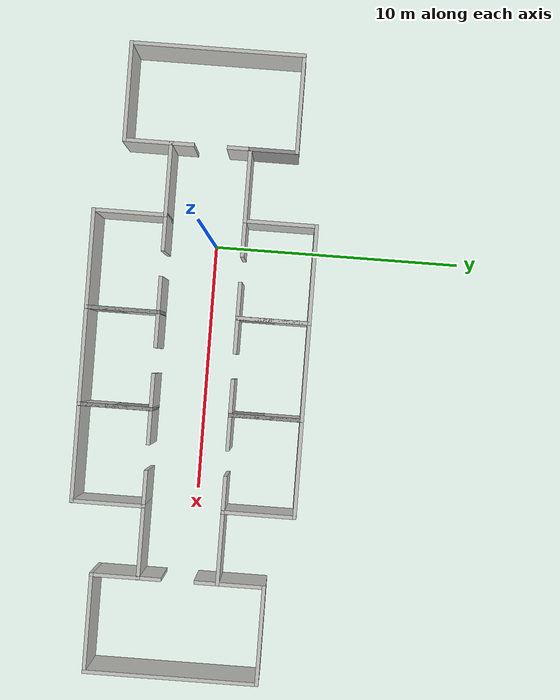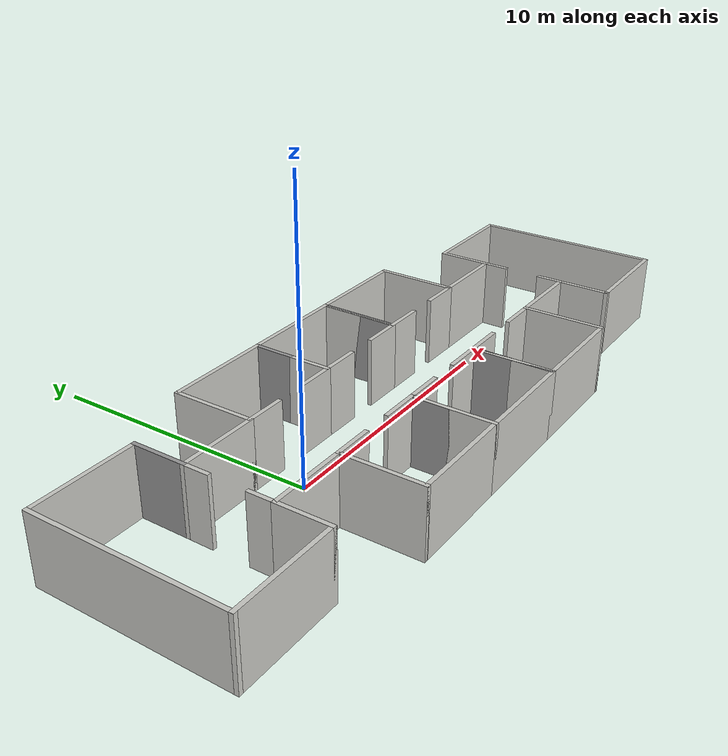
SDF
<?xml version='1.0'?>
<sdf version='1.7'>
  <model name='FPSO_World_'>
    <pose>4.87469 -0.36213 0 0 -0 0</pose>
    <link name='Wall_10'>
      <collision name='Wall_10_Collision'>
        <geometry>
          <box>
            <size>4 0.15 2.5</size>
          </box>
        </geometry>
        <pose>0 0 1.25 0 -0 0</pose>
      </collision>
      <visual name='Wall_10_Visual'>
        <pose>0 0 1.25 0 -0 0</pose>
        <geometry>
          <box>
            <size>4 0.15 2.5</size>
          </box>
        </geometry>
        <material>
          <script>
            <uri>file://media/materials/scripts/gazebo.material</uri>
            <name>Gazebo/CeilingTiled</name>
          </script>
          <ambient>1 1 1 1</ambient>
        </material>
        <meta>
          <layer>0</layer>
        </meta>
      </visual>
      <pose>-10.55 -3.425 0 0 -0 0</pose>
    </link>
    <link name='Wall_11'>
      <collision name='Wall_11_Collision'>
        <geometry>
          <box>
            <size>2 0.15 2.5</size>
          </box>
        </geometry>
        <pose>0 0 1.25 0 -0 0</pose>
      </collision>
      <visual name='Wall_11_Visual'>
        <pose>0 0 1.25 0 -0 0</pose>
        <geometry>
          <box>
            <size>2 0.15 2.5</size>
          </box>
        </geometry>
        <material>
          <script>
            <uri>file://media/materials/scripts/gazebo.material</uri>
            <name>Gazebo/CeilingTiled</name>
          </script>
          <ambient>1 1 1 1</ambient>
        </material>
        <meta>
          <layer>0</layer>
        </meta>
      </visual>
      <pose>-8.625 -2.5 0 0 -0 1.5708</pose>
    </link>
    <link name='Wall_13'>
      <collision name='Wall_13_Collision'>
        <geometry>
          <box>
            <size>2 0.15 2.5</size>
          </box>
        </geometry>
        <pose>0 0 1.25 0 -0 0</pose>
      </collision>
      <visual name='Wall_13_Visual'>
        <pose>0 0 1.25 0 -0 0</pose>
        <geometry>
          <box>
            <size>2 0.15 2.5</size>
          </box>
        </geometry>
        <material>
          <script>
            <uri>file://media/materials/scripts/gazebo.material</uri>
            <name>Gazebo/Grey</name>
          </script>
          <ambient>1 1 1 1</ambient>
        </material>
        <meta>
          <layer>0</layer>
        </meta>
      </visual>
      <pose>-8.625 2.5 0 0 -0 -1.5708</pose>
    </link>
    <link name='Wall_14'>
      <collision name='Wall_14_Collision'>
        <geometry>
          <box>
            <size>3.00007 0.15 2.5</size>
          </box>
        </geometry>
        <pose>0 0 1.25 0 -0 0</pose>
      </collision>
      <visual name='Wall_14_Visual'>
        <pose>0 0 1.25 0 -0 0</pose>
        <geometry>
          <box>
            <size>3.00007 0.15 2.5</size>
          </box>
        </geometry>
        <material>
          <script>
            <uri>file://media/materials/scripts/gazebo.material</uri>
            <name>Gazebo/CeilingTiled</name>
          </script>
          <ambient>1 1 1 1</ambient>
        </material>
        <meta>
          <layer>0</layer>
        </meta>
      </visual>
      <pose>-7.2 1.575 0 0 -0 0</pose>
    </link>
    <link name='Wall_16'>
      <collision name='Wall_16_Collision'>
        <geometry>
          <box>
            <size>3 0.15 2.5</size>
          </box>
        </geometry>
        <pose>0 0 1.25 0 -0 0</pose>
      </collision>
      <visual name='Wall_16_Visual'>
        <pose>0 0 1.25 0 -0 0</pose>
        <geometry>
          <box>
            <size>3 0.15 2.5</size>
          </box>
        </geometry>
        <material>
          <script>
            <uri>file://media/materials/scripts/gazebo.material</uri>
            <name>Gazebo/CeilingTiled</name>
          </script>
          <ambient>1 1 1 1</ambient>
        </material>
        <meta>
          <layer>0</layer>
        </meta>
      </visual>
      <pose>-5.775 3 0 0 -0 1.5708</pose>
    </link>
    <link name='Wall_17'>
      <collision name='Wall_17_Collision'>
        <geometry>
          <box>
            <size>4 0.15 2.5</size>
          </box>
        </geometry>
        <pose>0 0 1.25 0 -0 0</pose>
      </collision>
      <visual name='Wall_17_Visual'>
        <pose>0 0 1.25 0 -0 0</pose>
        <geometry>
          <box>
            <size>4 0.15 2.5</size>
          </box>
        </geometry>
        <material>
          <script>
            <uri>file://media/materials/scripts/gazebo.material</uri>
            <name>Gazebo/CeilingTiled</name>
          </script>
          <ambient>1 1 1 1</ambient>
        </material>
        <meta>
          <layer>0</layer>
        </meta>
      </visual>
      <pose>-3.85 4.425 0 0 -0 0</pose>
    </link>
    <link name='Wall_18'>
      <collision name='Wall_18_Collision'>
        <geometry>
          <box>
            <size>3 0.15 2.5</size>
          </box>
        </geometry>
        <pose>0 0 1.25 0 -0 0</pose>
      </collision>
      <visual name='Wall_18_Visual'>
        <pose>0 0 1.25 0 -0 0</pose>
        <geometry>
          <box>
            <size>3 0.15 2.5</size>
          </box>
        </geometry>
        <material>
          <script>
            <uri>file://media/materials/scripts/gazebo.material</uri>
            <name>Gazebo/CeilingTiled</name>
          </script>
          <ambient>1 1 1 1</ambient>
        </material>
        <meta>
          <layer>0</layer>
        </meta>
      </visual>
      <pose>-1.925 3 0 0 -0 -1.5708</pose>
    </link>
    <link name='Wall_19'>
      <collision name='Wall_19_Collision'>
        <geometry>
          <box>
            <size>3 0.15 2.5</size>
          </box>
        </geometry>
        <pose>0 0 1.25 0 -0 0</pose>
      </collision>
      <visual name='Wall_19_Visual'>
        <pose>0 0 1.25 0 -0 0</pose>
        <geometry>
          <box>
            <size>3 0.15 2.5</size>
          </box>
        </geometry>
        <material>
          <script>
            <uri>file://media/materials/scripts/gazebo.material</uri>
            <name>Gazebo/Grey</name>
          </script>
          <ambient>1 1 1 1</ambient>
        </material>
        <meta>
          <layer>0</layer>
        </meta>
      </visual>
      <pose>-1.925 3 0 0 -0 1.5708</pose>
    </link>
    <link name='Wall_2'>
      <collision name='Wall_2_Collision'>
        <geometry>
          <box>
            <size>7 0.15 2.5</size>
          </box>
        </geometry>
        <pose>0 0 1.25 0 -0 0</pose>
      </collision>
      <visual name='Wall_2_Visual'>
        <pose>0 0 1.25 0 -0 0</pose>
        <geometry>
          <box>
            <size>7 0.15 2.5</size>
          </box>
        </geometry>
        <material>
          <script>
            <uri>file://media/materials/scripts/gazebo.material</uri>
            <name>Gazebo/CeilingTiled</name>
          </script>
          <ambient>1 1 1 1</ambient>
        </material>
        <meta>
          <layer>0</layer>
        </meta>
      </visual>
      <pose>-12.475 0 0 0 -0 1.5708</pose>
    </link>
    <link name='Wall_20'>
      <collision name='Wall_20_Collision'>
        <geometry>
          <box>
            <size>4 0.15 2.5</size>
          </box>
        </geometry>
        <pose>0 0 1.25 0 -0 0</pose>
      </collision>
      <visual name='Wall_20_Visual'>
        <pose>0 0 1.25 0 -0 0</pose>
        <geometry>
          <box>
            <size>4 0.15 2.5</size>
          </box>
        </geometry>
        <material>
          <script>
            <uri>file://media/materials/scripts/gazebo.material</uri>
            <name>Gazebo/CeilingTiled</name>
          </script>
          <ambient>1 1 1 1</ambient>
        </material>
        <meta>
          <layer>0</layer>
        </meta>
      </visual>
      <pose>0 4.425 0 0 -0 0</pose>
    </link>
    <link name='Wall_21'>
      <collision name='Wall_21_Collision'>
        <geometry>
          <box>
            <size>3 0.15 2.5</size>
          </box>
        </geometry>
        <pose>0 0 1.25 0 -0 0</pose>
      </collision>
      <visual name='Wall_21_Visual'>
        <pose>0 0 1.25 0 -0 0</pose>
        <geometry>
          <box>
            <size>3 0.15 2.5</size>
          </box>
        </geometry>
        <material>
          <script>
            <uri>file://media/materials/scripts/gazebo.material</uri>
            <name>Gazebo/Grey</name>
          </script>
          <ambient>1 1 1 1</ambient>
        </material>
        <meta>
          <layer>0</layer>
        </meta>
      </visual>
      <pose>1.925 3 0 0 -0 -1.5708</pose>
    </link>
    <link name='Wall_22'>
      <collision name='Wall_22_Collision'>
        <geometry>
          <box>
            <size>3 0.15 2.5</size>
          </box>
        </geometry>
        <pose>0 0 1.25 0 -0 0</pose>
      </collision>
      <visual name='Wall_22_Visual'>
        <pose>0 0 1.25 0 -0 0</pose>
        <geometry>
          <box>
            <size>3 0.15 2.5</size>
          </box>
        </geometry>
        <material>
          <script>
            <uri>file://media/materials/scripts/gazebo.material</uri>
            <name>Gazebo/CeilingTiled</name>
          </script>
          <ambient>1 1 1 1</ambient>
        </material>
        <meta>
          <layer>0</layer>
        </meta>
      </visual>
      <pose>1.925 3 0 0 -0 1.5708</pose>
    </link>
    <link name='Wall_23'>
      <collision name='Wall_23_Collision'>
        <geometry>
          <box>
            <size>4 0.15 2.5</size>
          </box>
        </geometry>
        <pose>0 0 1.25 0 -0 0</pose>
      </collision>
      <visual name='Wall_23_Visual'>
        <pose>0 0 1.25 0 -0 0</pose>
        <geometry>
          <box>
            <size>4 0.15 2.5</size>
          </box>
        </geometry>
        <material>
          <script>
            <uri>file://media/materials/scripts/gazebo.material</uri>
            <name>Gazebo/CeilingTiled</name>
          </script>
          <ambient>1 1 1 1</ambient>
        </material>
        <meta>
          <layer>0</layer>
        </meta>
      </visual>
      <pose>3.85 4.425 0 0 -0 0</pose>
    </link>
    <link name='Wall_24'>
      <collision name='Wall_24_Collision'>
        <geometry>
          <box>
            <size>3 0.15 2.5</size>
          </box>
        </geometry>
        <pose>0 0 1.25 0 -0 0</pose>
      </collision>
      <visual name='Wall_24_Visual'>
        <pose>0 0 1.25 0 -0 0</pose>
        <geometry>
          <box>
            <size>3 0.15 2.5</size>
          </box>
        </geometry>
        <material>
          <script>
            <uri>file://media/materials/scripts/gazebo.material</uri>
            <name>Gazebo/CeilingTiled</name>
          </script>
          <ambient>1 1 1 1</ambient>
        </material>
        <meta>
          <layer>0</layer>
        </meta>
      </visual>
      <pose>5.775 3 0 0 -0 -1.5708</pose>
    </link>
    <link name='Wall_26'>
      <collision name='Wall_26_Collision'>
        <geometry>
          <box>
            <size>3 0.15 2.5</size>
          </box>
        </geometry>
        <pose>0 0 1.25 0 -0 0</pose>
      </collision>
      <visual name='Wall_26_Visual'>
        <pose>0 0 1.25 0 -0 0</pose>
        <geometry>
          <box>
            <size>3 0.15 2.5</size>
          </box>
        </geometry>
        <material>
          <script>
            <uri>file://media/materials/scripts/gazebo.material</uri>
            <name>Gazebo/CeilingTiled</name>
          </script>
          <ambient>1 1 1 1</ambient>
        </material>
        <meta>
          <layer>0</layer>
        </meta>
      </visual>
      <pose>-7.2 -1.575 0 0 -0 0</pose>
    </link>
    <link name='Wall_27'>
      <collision name='Wall_27_Collision'>
        <geometry>
          <box>
            <size>3 0.15 2.5</size>
          </box>
        </geometry>
        <pose>0 0 1.25 0 -0 0</pose>
      </collision>
      <visual name='Wall_27_Visual'>
        <pose>0 0 1.25 0 -0 0</pose>
        <geometry>
          <box>
            <size>3 0.15 2.5</size>
          </box>
        </geometry>
        <material>
          <script>
            <uri>file://media/materials/scripts/gazebo.material</uri>
            <name>Gazebo/CeilingTiled</name>
          </script>
          <ambient>1 1 1 1</ambient>
        </material>
        <meta>
          <layer>0</layer>
        </meta>
      </visual>
      <pose>-5.775 -3 0 0 -0 -1.5708</pose>
    </link>
    <link name='Wall_28'>
      <collision name='Wall_28_Collision'>
        <geometry>
          <box>
            <size>4 0.15 2.5</size>
          </box>
        </geometry>
        <pose>0 0 1.25 0 -0 0</pose>
      </collision>
      <visual name='Wall_28_Visual'>
        <pose>0 0 1.25 0 -0 0</pose>
        <geometry>
          <box>
            <size>4 0.15 2.5</size>
          </box>
        </geometry>
        <material>
          <script>
            <uri>file://media/materials/scripts/gazebo.material</uri>
            <name>Gazebo/CeilingTiled</name>
          </script>
          <ambient>1 1 1 1</ambient>
        </material>
        <meta>
          <layer>0</layer>
        </meta>
      </visual>
      <pose>-3.85 -4.425 0 0 -0 0</pose>
    </link>
    <link name='Wall_29'>
      <collision name='Wall_29_Collision'>
        <geometry>
          <box>
            <size>3 0.15 2.5</size>
          </box>
        </geometry>
        <pose>0 0 1.25 0 -0 0</pose>
      </collision>
      <visual name='Wall_29_Visual'>
        <pose>0 0 1.25 0 -0 0</pose>
        <geometry>
          <box>
            <size>3 0.15 2.5</size>
          </box>
        </geometry>
        <material>
          <script>
            <uri>file://media/materials/scripts/gazebo.material</uri>
            <name>Gazebo/Grey</name>
          </script>
          <ambient>1 1 1 1</ambient>
        </material>
        <meta>
          <layer>0</layer>
        </meta>
      </visual>
      <pose>-1.925 -3 0 0 -0 1.5708</pose>
    </link>
    <link name='Wall_3'>
      <collision name='Wall_3_Collision'>
        <geometry>
          <box>
            <size>4 0.15 2.5</size>
          </box>
        </geometry>
        <pose>0 0 1.25 0 -0 0</pose>
      </collision>
      <visual name='Wall_3_Visual'>
        <pose>0 0 1.25 0 -0 0</pose>
        <geometry>
          <box>
            <size>4 0.15 2.5</size>
          </box>
        </geometry>
        <material>
          <script>
            <uri>file://media/materials/scripts/gazebo.material</uri>
            <name>Gazebo/CeilingTiled</name>
          </script>
          <ambient>1 1 1 1</ambient>
        </material>
        <meta>
          <layer>0</layer>
        </meta>
      </visual>
      <pose>-10.55 3.425 0 0 -0 0</pose>
    </link>
    <link name='Wall_31'>
      <collision name='Wall_31_Collision'>
        <geometry>
          <box>
            <size>3 0.15 2.5</size>
          </box>
        </geometry>
        <pose>0 0 1.25 0 -0 0</pose>
      </collision>
      <visual name='Wall_31_Visual'>
        <pose>0 0 1.25 0 -0 0</pose>
        <geometry>
          <box>
            <size>3 0.15 2.5</size>
          </box>
        </geometry>
        <material>
          <script>
            <uri>file://media/materials/scripts/gazebo.material</uri>
            <name>Gazebo/CeilingTiled</name>
          </script>
          <ambient>1 1 1 1</ambient>
        </material>
        <meta>
          <layer>0</layer>
        </meta>
      </visual>
      <pose>-1.925 -3 0 0 -0 -1.5708</pose>
    </link>
    <link name='Wall_32'>
      <collision name='Wall_32_Collision'>
        <geometry>
          <box>
            <size>4 0.15 2.5</size>
          </box>
        </geometry>
        <pose>0 0 1.25 0 -0 0</pose>
      </collision>
      <visual name='Wall_32_Visual'>
        <pose>0 0 1.25 0 -0 0</pose>
        <geometry>
          <box>
            <size>4 0.15 2.5</size>
          </box>
        </geometry>
        <material>
          <script>
            <uri>file://media/materials/scripts/gazebo.material</uri>
            <name>Gazebo/CeilingTiled</name>
          </script>
          <ambient>1 1 1 1</ambient>
        </material>
        <meta>
          <layer>0</layer>
        </meta>
      </visual>
      <pose>0 -4.425 0 0 -0 0</pose>
    </link>
    <link name='Wall_33'>
      <collision name='Wall_33_Collision'>
        <geometry>
          <box>
            <size>3 0.15 2.5</size>
          </box>
        </geometry>
        <pose>0 0 1.25 0 -0 0</pose>
      </collision>
      <visual name='Wall_33_Visual'>
        <pose>0 0 1.25 0 -0 0</pose>
        <geometry>
          <box>
            <size>3 0.15 2.5</size>
          </box>
        </geometry>
        <material>
          <script>
            <uri>file://media/materials/scripts/gazebo.material</uri>
            <name>Gazebo/Grey</name>
          </script>
          <ambient>1 1 1 1</ambient>
        </material>
        <meta>
          <layer>0</layer>
        </meta>
      </visual>
      <pose>1.925 -3 0 0 -0 1.5708</pose>
    </link>
    <link name='Wall_34'>
      <collision name='Wall_34_Collision'>
        <geometry>
          <box>
            <size>3 0.15 2.5</size>
          </box>
        </geometry>
        <pose>0 0 1.25 0 -0 0</pose>
      </collision>
      <visual name='Wall_34_Visual'>
        <pose>0 0 1.25 0 -0 0</pose>
        <geometry>
          <box>
            <size>3 0.15 2.5</size>
          </box>
        </geometry>
        <material>
          <script>
            <uri>file://media/materials/scripts/gazebo.material</uri>
            <name>Gazebo/CeilingTiled</name>
          </script>
          <ambient>1 1 1 1</ambient>
        </material>
        <meta>
          <layer>0</layer>
        </meta>
      </visual>
      <pose>1.925 -3 0 0 -0 -1.5708</pose>
    </link>
    <link name='Wall_35'>
      <collision name='Wall_35_Collision'>
        <geometry>
          <box>
            <size>4 0.15 2.5</size>
          </box>
        </geometry>
        <pose>0 0 1.25 0 -0 0</pose>
      </collision>
      <visual name='Wall_35_Visual'>
        <pose>0 0 1.25 0 -0 0</pose>
        <geometry>
          <box>
            <size>4 0.15 2.5</size>
          </box>
        </geometry>
        <material>
          <script>
            <uri>file://media/materials/scripts/gazebo.material</uri>
            <name>Gazebo/CeilingTiled</name>
          </script>
          <ambient>1 1 1 1</ambient>
        </material>
        <meta>
          <layer>0</layer>
        </meta>
      </visual>
      <pose>3.85 -4.425 0 0 -0 0</pose>
    </link>
    <link name='Wall_36'>
      <collision name='Wall_36_Collision'>
        <geometry>
          <box>
            <size>3 0.15 2.5</size>
          </box>
        </geometry>
        <pose>0 0 1.25 0 -0 0</pose>
      </collision>
      <visual name='Wall_36_Visual'>
        <pose>0 0 1.25 0 -0 0</pose>
        <geometry>
          <box>
            <size>3 0.15 2.5</size>
          </box>
        </geometry>
        <material>
          <script>
            <uri>file://media/materials/scripts/gazebo.material</uri>
            <name>Gazebo/CeilingTiled</name>
          </script>
          <ambient>1 1 1 1</ambient>
        </material>
        <meta>
          <layer>0</layer>
        </meta>
      </visual>
      <pose>5.775 -3 0 0 -0 1.5708</pose>
    </link>
    <link name='Wall_39'>
      <collision name='Wall_39_Collision'>
        <geometry>
          <box>
            <size>3 0.15 2.5</size>
          </box>
        </geometry>
        <pose>0 0 1.25 0 -0 0</pose>
      </collision>
      <visual name='Wall_39_Visual'>
        <pose>0 0 1.25 0 -0 0</pose>
        <geometry>
          <box>
            <size>3 0.15 2.5</size>
          </box>
        </geometry>
        <material>
          <script>
            <uri>file://media/materials/scripts/gazebo.material</uri>
            <name>Gazebo/CeilingTiled</name>
          </script>
          <ambient>1 1 1 1</ambient>
        </material>
        <meta>
          <layer>0</layer>
        </meta>
      </visual>
      <pose>7.2 1.575 0 0 -0 0</pose>
    </link>
    <link name='Wall_41'>
      <collision name='Wall_41_Collision'>
        <geometry>
          <box>
            <size>2 0.15 2.5</size>
          </box>
        </geometry>
        <pose>0 0 1.25 0 -0 0</pose>
      </collision>
      <visual name='Wall_41_Visual'>
        <pose>0 0 1.25 0 -0 0</pose>
        <geometry>
          <box>
            <size>2 0.15 2.5</size>
          </box>
        </geometry>
        <material>
          <script>
            <uri>file://media/materials/scripts/gazebo.material</uri>
            <name>Gazebo/CeilingTiled</name>
          </script>
          <ambient>1 1 1 1</ambient>
        </material>
        <meta>
          <layer>0</layer>
        </meta>
      </visual>
      <pose>8.625 2.5 0 0 -0 1.5708</pose>
    </link>
    <link name='Wall_43'>
      <collision name='Wall_43_Collision'>
        <geometry>
          <box>
            <size>4 0.15 2.5</size>
          </box>
        </geometry>
        <pose>0 0 1.25 0 -0 0</pose>
      </collision>
      <visual name='Wall_43_Visual'>
        <pose>0 0 1.25 0 -0 0</pose>
        <geometry>
          <box>
            <size>4 0.15 2.5</size>
          </box>
        </geometry>
        <material>
          <script>
            <uri>file://media/materials/scripts/gazebo.material</uri>
            <name>Gazebo/CeilingTiled</name>
          </script>
          <ambient>1 1 1 1</ambient>
        </material>
        <meta>
          <layer>0</layer>
        </meta>
      </visual>
      <pose>10.55 3.425 0 0 -0 0</pose>
    </link>
    <link name='Wall_44'>
      <collision name='Wall_44_Collision'>
        <geometry>
          <box>
            <size>7 0.15 2.5</size>
          </box>
        </geometry>
        <pose>0 0 1.25 0 -0 0</pose>
      </collision>
      <visual name='Wall_44_Visual'>
        <pose>0 0 1.25 0 -0 0</pose>
        <geometry>
          <box>
            <size>7 0.15 2.5</size>
          </box>
        </geometry>
        <material>
          <script>
            <uri>file://media/materials/scripts/gazebo.material</uri>
            <name>Gazebo/CeilingTiled</name>
          </script>
          <ambient>1 1 1 1</ambient>
        </material>
        <meta>
          <layer>0</layer>
        </meta>
      </visual>
      <pose>12.475 0 0 0 -0 -1.5708</pose>
    </link>
    <link name='Wall_45'>
      <collision name='Wall_45_Collision'>
        <geometry>
          <box>
            <size>4 0.15 2.5</size>
          </box>
        </geometry>
        <pose>0 0 1.25 0 -0 0</pose>
      </collision>
      <visual name='Wall_45_Visual'>
        <pose>0 0 1.25 0 -0 0</pose>
        <geometry>
          <box>
            <size>4 0.15 2.5</size>
          </box>
        </geometry>
        <material>
          <script>
            <uri>file://media/materials/scripts/gazebo.material</uri>
            <name>Gazebo/CeilingTiled</name>
          </script>
          <ambient>1 1 1 1</ambient>
        </material>
        <meta>
          <layer>0</layer>
        </meta>
      </visual>
      <pose>10.55 -3.425 0 0 -0 3.14159</pose>
    </link>
    <link name='Wall_46'>
      <collision name='Wall_46_Collision'>
        <geometry>
          <box>
            <size>2 0.15 2.5</size>
          </box>
        </geometry>
        <pose>0 0 1.25 0 -0 0</pose>
      </collision>
      <visual name='Wall_46_Visual'>
        <pose>0 0 1.25 0 -0 0</pose>
        <geometry>
          <box>
            <size>2 0.15 2.5</size>
          </box>
        </geometry>
        <material>
          <script>
            <uri>file://media/materials/scripts/gazebo.material</uri>
            <name>Gazebo/CeilingTiled</name>
          </script>
          <ambient>1 1 1 1</ambient>
        </material>
        <meta>
          <layer>0</layer>
        </meta>
      </visual>
      <pose>8.625 -2.5 0 0 -0 1.5708</pose>
    </link>
    <link name='Wall_47'>
      <collision name='Wall_47_Collision'>
        <geometry>
          <box>
            <size>3 0.15 2.5</size>
          </box>
        </geometry>
        <pose>0 0 1.25 0 -0 0</pose>
      </collision>
      <visual name='Wall_47_Visual'>
        <pose>0 0 1.25 0 -0 0</pose>
        <geometry>
          <box>
            <size>3 0.15 2.5</size>
          </box>
        </geometry>
        <material>
          <script>
            <uri>file://media/materials/scripts/gazebo.material</uri>
            <name>Gazebo/CeilingTiled</name>
          </script>
          <ambient>1 1 1 1</ambient>
        </material>
        <meta>
          <layer>0</layer>
        </meta>
      </visual>
      <pose>7.2 -1.575 0 0 -0 3.14159</pose>
    </link>
    <link name='Wall_49'>
      <collision name='Wall_49_Collision'>
        <geometry>
          <box>
            <size>1.5 0.15 2.5</size>
          </box>
        </geometry>
        <pose>0 0 1.25 0 -0 0</pose>
      </collision>
      <visual name='Wall_49_Visual'>
        <pose>0 0 1.25 0 -0 0</pose>
        <geometry>
          <box>
            <size>1.5 0.15 2.5</size>
          </box>
        </geometry>
        <material>
          <script>
            <uri>file://media/materials/scripts/gazebo.material</uri>
            <name>Gazebo/CeilingTiled</name>
          </script>
          <ambient>1 1 1 1</ambient>
        </material>
        <meta>
          <layer>0</layer>
        </meta>
      </visual>
      <pose>-5.1 1.575 0 0 -0 0</pose>
    </link>
    <link name='Wall_52'>
      <collision name='Wall_52_Collision'>
        <geometry>
          <box>
            <size>1.5 0.15 2.5</size>
          </box>
        </geometry>
        <pose>0 0 1.25 0 -0 0</pose>
      </collision>
      <visual name='Wall_52_Visual'>
        <pose>0 0 1.25 0 -0 0</pose>
        <geometry>
          <box>
            <size>1.5 0.15 2.5</size>
          </box>
        </geometry>
        <material>
          <script>
            <uri>file://media/materials/scripts/gazebo.material</uri>
            <name>Gazebo/CeilingTiled</name>
          </script>
          <ambient>1 1 1 1</ambient>
        </material>
        <meta>
          <layer>0</layer>
        </meta>
      </visual>
      <pose>-2.6 1.575 0 0 -0 3.14159</pose>
    </link>
    <link name='Wall_54'>
      <collision name='Wall_54_Collision'>
        <geometry>
          <box>
            <size>1.5 0.15 2.5</size>
          </box>
        </geometry>
        <pose>0 0 1.25 0 -0 0</pose>
      </collision>
      <visual name='Wall_54_Visual'>
        <pose>0 0 1.25 0 -0 0</pose>
        <geometry>
          <box>
            <size>1.5 0.15 2.5</size>
          </box>
        </geometry>
        <material>
          <script>
            <uri>file://media/materials/scripts/gazebo.material</uri>
            <name>Gazebo/CeilingTiled</name>
          </script>
          <ambient>1 1 1 1</ambient>
        </material>
        <meta>
          <layer>0</layer>
        </meta>
      </visual>
      <pose>-5.1 -1.575 0 0 -0 0</pose>
    </link>
    <link name='Wall_56'>
      <collision name='Wall_56_Collision'>
        <geometry>
          <box>
            <size>1.5 0.15 2.5</size>
          </box>
        </geometry>
        <pose>0 0 1.25 0 -0 0</pose>
      </collision>
      <visual name='Wall_56_Visual'>
        <pose>0 0 1.25 0 -0 0</pose>
        <geometry>
          <box>
            <size>1.5 0.15 2.5</size>
          </box>
        </geometry>
        <material>
          <script>
            <uri>file://media/materials/scripts/gazebo.material</uri>
            <name>Gazebo/CeilingTiled</name>
          </script>
          <ambient>1 1 1 1</ambient>
        </material>
        <meta>
          <layer>0</layer>
        </meta>
      </visual>
      <pose>-2.6 -1.575 0 0 -0 3.14159</pose>
    </link>
    <link name='Wall_58'>
      <collision name='Wall_58_Collision'>
        <geometry>
          <box>
            <size>1.5 0.15 2.5</size>
          </box>
        </geometry>
        <pose>0 0 1.25 0 -0 0</pose>
      </collision>
      <visual name='Wall_58_Visual'>
        <pose>0 0 1.25 0 -0 0</pose>
        <geometry>
          <box>
            <size>1.5 0.15 2.5</size>
          </box>
        </geometry>
        <material>
          <script>
            <uri>file://media/materials/scripts/gazebo.material</uri>
            <name>Gazebo/CeilingTiled</name>
          </script>
          <ambient>1 1 1 1</ambient>
        </material>
        <meta>
          <layer>0</layer>
        </meta>
      </visual>
      <pose>-1.25 1.575 0 0 -0 0</pose>
    </link>
    <link name='Wall_60'>
      <collision name='Wall_60_Collision'>
        <geometry>
          <box>
            <size>1.5 0.15 2.5</size>
          </box>
        </geometry>
        <pose>0 0 1.25 0 -0 0</pose>
      </collision>
      <visual name='Wall_60_Visual'>
        <pose>0 0 1.25 0 -0 0</pose>
        <geometry>
          <box>
            <size>1.5 0.15 2.5</size>
          </box>
        </geometry>
        <material>
          <script>
            <uri>file://media/materials/scripts/gazebo.material</uri>
            <name>Gazebo/CeilingTiled</name>
          </script>
          <ambient>1 1 1 1</ambient>
        </material>
        <meta>
          <layer>0</layer>
        </meta>
      </visual>
      <pose>1.25 1.575 0 0 -0 3.14159</pose>
    </link>
    <link name='Wall_62'>
      <collision name='Wall_62_Collision'>
        <geometry>
          <box>
            <size>1.5 0.15 2.5</size>
          </box>
        </geometry>
        <pose>0 0 1.25 0 -0 0</pose>
      </collision>
      <visual name='Wall_62_Visual'>
        <pose>0 0 1.25 0 -0 0</pose>
        <geometry>
          <box>
            <size>1.5 0.15 2.5</size>
          </box>
        </geometry>
        <material>
          <script>
            <uri>file://media/materials/scripts/gazebo.material</uri>
            <name>Gazebo/CeilingTiled</name>
          </script>
          <ambient>1 1 1 1</ambient>
        </material>
        <meta>
          <layer>0</layer>
        </meta>
      </visual>
      <pose>-1.25 -1.575 0 0 -0 0</pose>
    </link>
    <link name='Wall_64'>
      <collision name='Wall_64_Collision'>
        <geometry>
          <box>
            <size>1.5 0.15 2.5</size>
          </box>
        </geometry>
        <pose>0 0 1.25 0 -0 0</pose>
      </collision>
      <visual name='Wall_64_Visual'>
        <pose>0 0 1.25 0 -0 0</pose>
        <geometry>
          <box>
            <size>1.5 0.15 2.5</size>
          </box>
        </geometry>
        <material>
          <script>
            <uri>file://media/materials/scripts/gazebo.material</uri>
            <name>Gazebo/CeilingTiled</name>
          </script>
          <ambient>1 1 1 1</ambient>
        </material>
        <meta>
          <layer>0</layer>
        </meta>
      </visual>
      <pose>1.25 -1.575 0 0 -0 3.14159</pose>
    </link>
    <link name='Wall_66'>
      <collision name='Wall_66_Collision'>
        <geometry>
          <box>
            <size>1.5 0.15 2.5</size>
          </box>
        </geometry>
        <pose>0 0 1.25 0 -0 0</pose>
      </collision>
      <visual name='Wall_66_Visual'>
        <pose>0 0 1.25 0 -0 0</pose>
        <geometry>
          <box>
            <size>1.5 0.15 2.5</size>
          </box>
        </geometry>
        <material>
          <script>
            <uri>file://media/materials/scripts/gazebo.material</uri>
            <name>Gazebo/CeilingTiled</name>
          </script>
          <ambient>1 1 1 1</ambient>
        </material>
        <meta>
          <layer>0</layer>
        </meta>
      </visual>
      <pose>2.6 1.575 0 0 -0 0</pose>
    </link>
    <link name='Wall_68'>
      <collision name='Wall_68_Collision'>
        <geometry>
          <box>
            <size>1.5 0.15 2.5</size>
          </box>
        </geometry>
        <pose>0 0 1.25 0 -0 0</pose>
      </collision>
      <visual name='Wall_68_Visual'>
        <pose>0 0 1.25 0 -0 0</pose>
        <geometry>
          <box>
            <size>1.5 0.15 2.5</size>
          </box>
        </geometry>
        <material>
          <script>
            <uri>file://media/materials/scripts/gazebo.material</uri>
            <name>Gazebo/CeilingTiled</name>
          </script>
          <ambient>1 1 1 1</ambient>
        </material>
        <meta>
          <layer>0</layer>
        </meta>
      </visual>
      <pose>5.1 1.575 0 0 -0 3.14159</pose>
    </link>
    <link name='Wall_70'>
      <collision name='Wall_70_Collision'>
        <geometry>
          <box>
            <size>1.5 0.15 2.5</size>
          </box>
        </geometry>
        <pose>0 0 1.25 0 -0 0</pose>
      </collision>
      <visual name='Wall_70_Visual'>
        <pose>0 0 1.25 0 -0 0</pose>
        <geometry>
          <box>
            <size>1.5 0.15 2.5</size>
          </box>
        </geometry>
        <material>
          <script>
            <uri>file://media/materials/scripts/gazebo.material</uri>
            <name>Gazebo/CeilingTiled</name>
          </script>
          <ambient>1 1 1 1</ambient>
        </material>
        <meta>
          <layer>0</layer>
        </meta>
      </visual>
      <pose>2.6 -1.575 0 0 -0 0</pose>
    </link>
    <link name='Wall_72'>
      <collision name='Wall_72_Collision'>
        <geometry>
          <box>
            <size>1.5 0.15 2.5</size>
          </box>
        </geometry>
        <pose>0 0 1.25 0 -0 0</pose>
      </collision>
      <visual name='Wall_72_Visual'>
        <pose>0 0 1.25 0 -0 0</pose>
        <geometry>
          <box>
            <size>1.5 0.15 2.5</size>
          </box>
        </geometry>
        <material>
          <script>
            <uri>file://media/materials/scripts/gazebo.material</uri>
            <name>Gazebo/CeilingTiled</name>
          </script>
          <ambient>1 1 1 1</ambient>
        </material>
        <meta>
          <layer>0</layer>
        </meta>
      </visual>
      <pose>5.1 -1.575 0 0 -0 3.14159</pose>
    </link>
    <link name='Wall_74'>
      <collision name='Wall_74_Collision'>
        <geometry>
          <box>
            <size>1 0.15 2.5</size>
          </box>
        </geometry>
        <pose>0 0 1.25 0 -0 0</pose>
      </collision>
      <visual name='Wall_74_Visual'>
        <pose>0 0 1.25 0 -0 0</pose>
        <geometry>
          <box>
            <size>1 0.15 2.5</size>
          </box>
        </geometry>
        <material>
          <script>
            <uri>file://media/materials/scripts/gazebo.material</uri>
            <name>Gazebo/CeilingTiled</name>
          </script>
          <ambient>1 1 1 1</ambient>
        </material>
        <meta>
          <layer>0</layer>
        </meta>
      </visual>
      <pose>-8.625 1.15 0 0 -0 -1.5708</pose>
    </link>
    <link name='Wall_76'>
      <collision name='Wall_76_Collision'>
        <geometry>
          <box>
            <size>1 0.15 2.5</size>
          </box>
        </geometry>
        <pose>0 0 1.25 0 -0 0</pose>
      </collision>
      <visual name='Wall_76_Visual'>
        <pose>0 0 1.25 0 -0 0</pose>
        <geometry>
          <box>
            <size>1 0.15 2.5</size>
          </box>
        </geometry>
        <material>
          <script>
            <uri>file://media/materials/scripts/gazebo.material</uri>
            <name>Gazebo/CeilingTiled</name>
          </script>
          <ambient>1 1 1 1</ambient>
        </material>
        <meta>
          <layer>0</layer>
        </meta>
      </visual>
      <pose>-8.625 -1.15 0 0 -0 1.5708</pose>
    </link>
    <link name='Wall_83'>
      <collision name='Wall_83_Collision'>
        <geometry>
          <box>
            <size>1 0.15 2.5</size>
          </box>
        </geometry>
        <pose>0 0 1.25 0 -0 0</pose>
      </collision>
      <visual name='Wall_83_Visual'>
        <pose>0 0 1.25 0 -0 0</pose>
        <geometry>
          <box>
            <size>1 0.15 2.5</size>
          </box>
        </geometry>
        <material>
          <script>
            <uri>file://media/materials/scripts/gazebo.material</uri>
            <name>Gazebo/CeilingTiled</name>
          </script>
          <ambient>1 1 1 1</ambient>
        </material>
        <meta>
          <layer>0</layer>
        </meta>
      </visual>
      <pose>8.625 1.15 0 0 -0 -1.5708</pose>
    </link>
    <link name='Wall_85'>
      <collision name='Wall_85_Collision'>
        <geometry>
          <box>
            <size>1 0.15 2.5</size>
          </box>
        </geometry>
        <pose>0 0 1.25 0 -0 0</pose>
      </collision>
      <visual name='Wall_85_Visual'>
        <pose>0 0 1.25 0 -0 0</pose>
        <geometry>
          <box>
            <size>1 0.15 2.5</size>
          </box>
        </geometry>
        <material>
          <script>
            <uri>file://media/materials/scripts/gazebo.material</uri>
            <name>Gazebo/CeilingTiled</name>
          </script>
          <ambient>1 1 1 1</ambient>
        </material>
        <meta>
          <layer>0</layer>
        </meta>
      </visual>
      <pose>8.625 -1.15 0 0 -0 1.5708</pose>
    </link>
    <static>1</static>
  </model>
</sdf>
